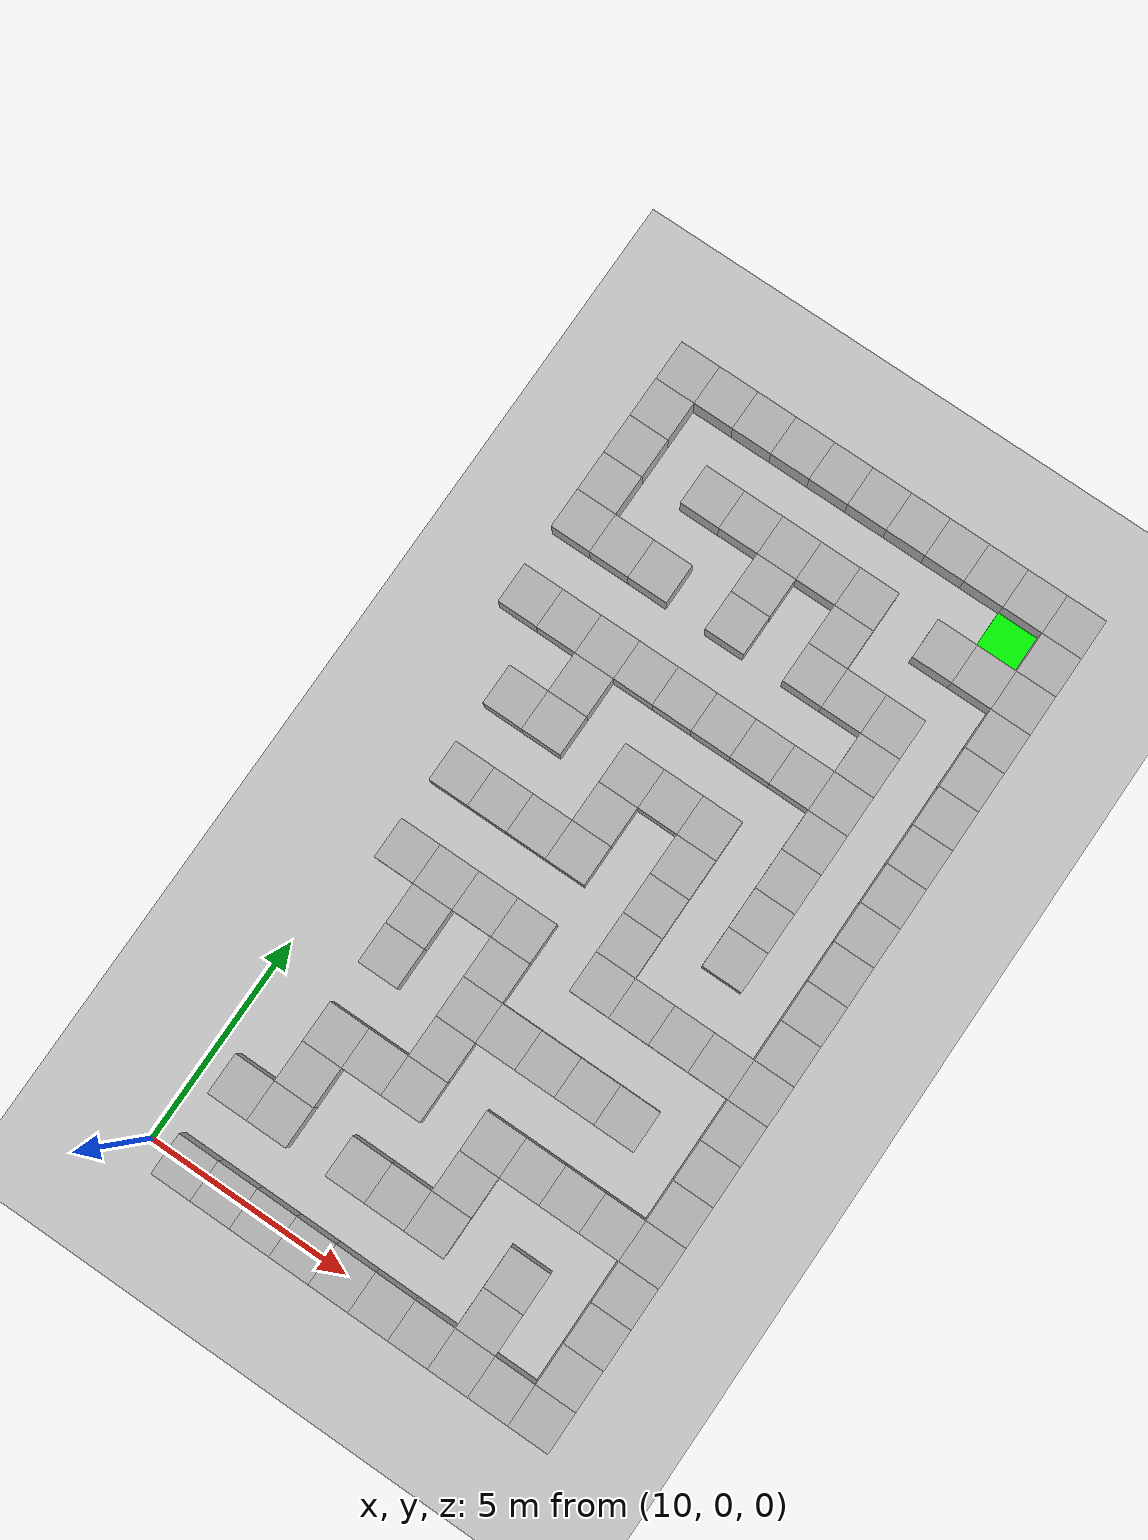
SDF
<sdf version="1.7">
 <world name="maze_world">
  <include><uri>model://ground_plane</uri></include>
  <include><uri>model://sun</uri></include>
  <model name="wall_11_0">
   <static>true</static>
   <pose>11 0 0 0 0 0</pose>
   <link name="link">
    <collision name="collision"><geometry><box><size>1 1 1</size></box></geometry></collision>
    <visual name="visual"><geometry><box><size>1 1 1</size></box></geometry></visual>
   </link>
  </model>
  <model name="wall_12_0">
   <static>true</static>
   <pose>12 0 0 0 0 0</pose>
   <link name="link">
    <collision name="collision"><geometry><box><size>1 1 1</size></box></geometry></collision>
    <visual name="visual"><geometry><box><size>1 1 1</size></box></geometry></visual>
   </link>
  </model>
  <model name="wall_13_0">
   <static>true</static>
   <pose>13 0 0 0 0 0</pose>
   <link name="link">
    <collision name="collision"><geometry><box><size>1 1 1</size></box></geometry></collision>
    <visual name="visual"><geometry><box><size>1 1 1</size></box></geometry></visual>
   </link>
  </model>
  <model name="wall_14_0">
   <static>true</static>
   <pose>14 0 0 0 0 0</pose>
   <link name="link">
    <collision name="collision"><geometry><box><size>1 1 1</size></box></geometry></collision>
    <visual name="visual"><geometry><box><size>1 1 1</size></box></geometry></visual>
   </link>
  </model>
  <model name="wall_15_0">
   <static>true</static>
   <pose>15 0 0 0 0 0</pose>
   <link name="link">
    <collision name="collision"><geometry><box><size>1 1 1</size></box></geometry></collision>
    <visual name="visual"><geometry><box><size>1 1 1</size></box></geometry></visual>
   </link>
  </model>
  <model name="wall_16_0">
   <static>true</static>
   <pose>16 0 0 0 0 0</pose>
   <link name="link">
    <collision name="collision"><geometry><box><size>1 1 1</size></box></geometry></collision>
    <visual name="visual"><geometry><box><size>1 1 1</size></box></geometry></visual>
   </link>
  </model>
  <model name="wall_17_0">
   <static>true</static>
   <pose>17 0 0 0 0 0</pose>
   <link name="link">
    <collision name="collision"><geometry><box><size>1 1 1</size></box></geometry></collision>
    <visual name="visual"><geometry><box><size>1 1 1</size></box></geometry></visual>
   </link>
  </model>
  <model name="wall_18_0">
   <static>true</static>
   <pose>18 0 0 0 0 0</pose>
   <link name="link">
    <collision name="collision"><geometry><box><size>1 1 1</size></box></geometry></collision>
    <visual name="visual"><geometry><box><size>1 1 1</size></box></geometry></visual>
   </link>
  </model>
  <model name="wall_19_0">
   <static>true</static>
   <pose>19 0 0 0 0 0</pose>
   <link name="link">
    <collision name="collision"><geometry><box><size>1 1 1</size></box></geometry></collision>
    <visual name="visual"><geometry><box><size>1 1 1</size></box></geometry></visual>
   </link>
  </model>
  <model name="wall_20_0">
   <static>true</static>
   <pose>20 0 0 0 0 0</pose>
   <link name="link">
    <collision name="collision"><geometry><box><size>1 1 1</size></box></geometry></collision>
    <visual name="visual"><geometry><box><size>1 1 1</size></box></geometry></visual>
   </link>
  </model>
  <model name="wall_18_1">
   <static>true</static>
   <pose>18 1 0 0 0 0</pose>
   <link name="link">
    <collision name="collision"><geometry><box><size>1 1 1</size></box></geometry></collision>
    <visual name="visual"><geometry><box><size>1 1 1</size></box></geometry></visual>
   </link>
  </model>
  <model name="wall_20_1">
   <static>true</static>
   <pose>20 1 0 0 0 0</pose>
   <link name="link">
    <collision name="collision"><geometry><box><size>1 1 1</size></box></geometry></collision>
    <visual name="visual"><geometry><box><size>1 1 1</size></box></geometry></visual>
   </link>
  </model>
  <model name="wall_11_2">
   <static>true</static>
   <pose>11 2 0 0 0 0</pose>
   <link name="link">
    <collision name="collision"><geometry><box><size>1 1 1</size></box></geometry></collision>
    <visual name="visual"><geometry><box><size>1 1 1</size></box></geometry></visual>
   </link>
  </model>
  <model name="wall_12_2">
   <static>true</static>
   <pose>12 2 0 0 0 0</pose>
   <link name="link">
    <collision name="collision"><geometry><box><size>1 1 1</size></box></geometry></collision>
    <visual name="visual"><geometry><box><size>1 1 1</size></box></geometry></visual>
   </link>
  </model>
  <model name="wall_14_2">
   <static>true</static>
   <pose>14 2 0 0 0 0</pose>
   <link name="link">
    <collision name="collision"><geometry><box><size>1 1 1</size></box></geometry></collision>
    <visual name="visual"><geometry><box><size>1 1 1</size></box></geometry></visual>
   </link>
  </model>
  <model name="wall_15_2">
   <static>true</static>
   <pose>15 2 0 0 0 0</pose>
   <link name="link">
    <collision name="collision"><geometry><box><size>1 1 1</size></box></geometry></collision>
    <visual name="visual"><geometry><box><size>1 1 1</size></box></geometry></visual>
   </link>
  </model>
  <model name="wall_16_2">
   <static>true</static>
   <pose>16 2 0 0 0 0</pose>
   <link name="link">
    <collision name="collision"><geometry><box><size>1 1 1</size></box></geometry></collision>
    <visual name="visual"><geometry><box><size>1 1 1</size></box></geometry></visual>
   </link>
  </model>
  <model name="wall_18_2">
   <static>true</static>
   <pose>18 2 0 0 0 0</pose>
   <link name="link">
    <collision name="collision"><geometry><box><size>1 1 1</size></box></geometry></collision>
    <visual name="visual"><geometry><box><size>1 1 1</size></box></geometry></visual>
   </link>
  </model>
  <model name="wall_20_2">
   <static>true</static>
   <pose>20 2 0 0 0 0</pose>
   <link name="link">
    <collision name="collision"><geometry><box><size>1 1 1</size></box></geometry></collision>
    <visual name="visual"><geometry><box><size>1 1 1</size></box></geometry></visual>
   </link>
  </model>
  <model name="wall_12_3">
   <static>true</static>
   <pose>12 3 0 0 0 0</pose>
   <link name="link">
    <collision name="collision"><geometry><box><size>1 1 1</size></box></geometry></collision>
    <visual name="visual"><geometry><box><size>1 1 1</size></box></geometry></visual>
   </link>
  </model>
  <model name="wall_16_3">
   <static>true</static>
   <pose>16 3 0 0 0 0</pose>
   <link name="link">
    <collision name="collision"><geometry><box><size>1 1 1</size></box></geometry></collision>
    <visual name="visual"><geometry><box><size>1 1 1</size></box></geometry></visual>
   </link>
  </model>
  <model name="wall_20_3">
   <static>true</static>
   <pose>20 3 0 0 0 0</pose>
   <link name="link">
    <collision name="collision"><geometry><box><size>1 1 1</size></box></geometry></collision>
    <visual name="visual"><geometry><box><size>1 1 1</size></box></geometry></visual>
   </link>
  </model>
  <model name="wall_12_4">
   <static>true</static>
   <pose>12 4 0 0 0 0</pose>
   <link name="link">
    <collision name="collision"><geometry><box><size>1 1 1</size></box></geometry></collision>
    <visual name="visual"><geometry><box><size>1 1 1</size></box></geometry></visual>
   </link>
  </model>
  <model name="wall_13_4">
   <static>true</static>
   <pose>13 4 0 0 0 0</pose>
   <link name="link">
    <collision name="collision"><geometry><box><size>1 1 1</size></box></geometry></collision>
    <visual name="visual"><geometry><box><size>1 1 1</size></box></geometry></visual>
   </link>
  </model>
  <model name="wall_14_4">
   <static>true</static>
   <pose>14 4 0 0 0 0</pose>
   <link name="link">
    <collision name="collision"><geometry><box><size>1 1 1</size></box></geometry></collision>
    <visual name="visual"><geometry><box><size>1 1 1</size></box></geometry></visual>
   </link>
  </model>
  <model name="wall_16_4">
   <static>true</static>
   <pose>16 4 0 0 0 0</pose>
   <link name="link">
    <collision name="collision"><geometry><box><size>1 1 1</size></box></geometry></collision>
    <visual name="visual"><geometry><box><size>1 1 1</size></box></geometry></visual>
   </link>
  </model>
  <model name="wall_17_4">
   <static>true</static>
   <pose>17 4 0 0 0 0</pose>
   <link name="link">
    <collision name="collision"><geometry><box><size>1 1 1</size></box></geometry></collision>
    <visual name="visual"><geometry><box><size>1 1 1</size></box></geometry></visual>
   </link>
  </model>
  <model name="wall_18_4">
   <static>true</static>
   <pose>18 4 0 0 0 0</pose>
   <link name="link">
    <collision name="collision"><geometry><box><size>1 1 1</size></box></geometry></collision>
    <visual name="visual"><geometry><box><size>1 1 1</size></box></geometry></visual>
   </link>
  </model>
  <model name="wall_19_4">
   <static>true</static>
   <pose>19 4 0 0 0 0</pose>
   <link name="link">
    <collision name="collision"><geometry><box><size>1 1 1</size></box></geometry></collision>
    <visual name="visual"><geometry><box><size>1 1 1</size></box></geometry></visual>
   </link>
  </model>
  <model name="wall_20_4">
   <static>true</static>
   <pose>20 4 0 0 0 0</pose>
   <link name="link">
    <collision name="collision"><geometry><box><size>1 1 1</size></box></geometry></collision>
    <visual name="visual"><geometry><box><size>1 1 1</size></box></geometry></visual>
   </link>
  </model>
  <model name="wall_14_5">
   <static>true</static>
   <pose>14 5 0 0 0 0</pose>
   <link name="link">
    <collision name="collision"><geometry><box><size>1 1 1</size></box></geometry></collision>
    <visual name="visual"><geometry><box><size>1 1 1</size></box></geometry></visual>
   </link>
  </model>
  <model name="wall_20_5">
   <static>true</static>
   <pose>20 5 0 0 0 0</pose>
   <link name="link">
    <collision name="collision"><geometry><box><size>1 1 1</size></box></geometry></collision>
    <visual name="visual"><geometry><box><size>1 1 1</size></box></geometry></visual>
   </link>
  </model>
  <model name="wall_12_6">
   <static>true</static>
   <pose>12 6 0 0 0 0</pose>
   <link name="link">
    <collision name="collision"><geometry><box><size>1 1 1</size></box></geometry></collision>
    <visual name="visual"><geometry><box><size>1 1 1</size></box></geometry></visual>
   </link>
  </model>
  <model name="wall_14_6">
   <static>true</static>
   <pose>14 6 0 0 0 0</pose>
   <link name="link">
    <collision name="collision"><geometry><box><size>1 1 1</size></box></geometry></collision>
    <visual name="visual"><geometry><box><size>1 1 1</size></box></geometry></visual>
   </link>
  </model>
  <model name="wall_15_6">
   <static>true</static>
   <pose>15 6 0 0 0 0</pose>
   <link name="link">
    <collision name="collision"><geometry><box><size>1 1 1</size></box></geometry></collision>
    <visual name="visual"><geometry><box><size>1 1 1</size></box></geometry></visual>
   </link>
  </model>
  <model name="wall_16_6">
   <static>true</static>
   <pose>16 6 0 0 0 0</pose>
   <link name="link">
    <collision name="collision"><geometry><box><size>1 1 1</size></box></geometry></collision>
    <visual name="visual"><geometry><box><size>1 1 1</size></box></geometry></visual>
   </link>
  </model>
  <model name="wall_17_6">
   <static>true</static>
   <pose>17 6 0 0 0 0</pose>
   <link name="link">
    <collision name="collision"><geometry><box><size>1 1 1</size></box></geometry></collision>
    <visual name="visual"><geometry><box><size>1 1 1</size></box></geometry></visual>
   </link>
  </model>
  <model name="wall_18_6">
   <static>true</static>
   <pose>18 6 0 0 0 0</pose>
   <link name="link">
    <collision name="collision"><geometry><box><size>1 1 1</size></box></geometry></collision>
    <visual name="visual"><geometry><box><size>1 1 1</size></box></geometry></visual>
   </link>
  </model>
  <model name="wall_20_6">
   <static>true</static>
   <pose>20 6 0 0 0 0</pose>
   <link name="link">
    <collision name="collision"><geometry><box><size>1 1 1</size></box></geometry></collision>
    <visual name="visual"><geometry><box><size>1 1 1</size></box></geometry></visual>
   </link>
  </model>
  <model name="wall_12_7">
   <static>true</static>
   <pose>12 7 0 0 0 0</pose>
   <link name="link">
    <collision name="collision"><geometry><box><size>1 1 1</size></box></geometry></collision>
    <visual name="visual"><geometry><box><size>1 1 1</size></box></geometry></visual>
   </link>
  </model>
  <model name="wall_14_7">
   <static>true</static>
   <pose>14 7 0 0 0 0</pose>
   <link name="link">
    <collision name="collision"><geometry><box><size>1 1 1</size></box></geometry></collision>
    <visual name="visual"><geometry><box><size>1 1 1</size></box></geometry></visual>
   </link>
  </model>
  <model name="wall_20_7">
   <static>true</static>
   <pose>20 7 0 0 0 0</pose>
   <link name="link">
    <collision name="collision"><geometry><box><size>1 1 1</size></box></geometry></collision>
    <visual name="visual"><geometry><box><size>1 1 1</size></box></geometry></visual>
   </link>
  </model>
  <model name="wall_11_8">
   <static>true</static>
   <pose>11 8 0 0 0 0</pose>
   <link name="link">
    <collision name="collision"><geometry><box><size>1 1 1</size></box></geometry></collision>
    <visual name="visual"><geometry><box><size>1 1 1</size></box></geometry></visual>
   </link>
  </model>
  <model name="wall_12_8">
   <static>true</static>
   <pose>12 8 0 0 0 0</pose>
   <link name="link">
    <collision name="collision"><geometry><box><size>1 1 1</size></box></geometry></collision>
    <visual name="visual"><geometry><box><size>1 1 1</size></box></geometry></visual>
   </link>
  </model>
  <model name="wall_13_8">
   <static>true</static>
   <pose>13 8 0 0 0 0</pose>
   <link name="link">
    <collision name="collision"><geometry><box><size>1 1 1</size></box></geometry></collision>
    <visual name="visual"><geometry><box><size>1 1 1</size></box></geometry></visual>
   </link>
  </model>
  <model name="wall_14_8">
   <static>true</static>
   <pose>14 8 0 0 0 0</pose>
   <link name="link">
    <collision name="collision"><geometry><box><size>1 1 1</size></box></geometry></collision>
    <visual name="visual"><geometry><box><size>1 1 1</size></box></geometry></visual>
   </link>
  </model>
  <model name="wall_16_8">
   <static>true</static>
   <pose>16 8 0 0 0 0</pose>
   <link name="link">
    <collision name="collision"><geometry><box><size>1 1 1</size></box></geometry></collision>
    <visual name="visual"><geometry><box><size>1 1 1</size></box></geometry></visual>
   </link>
  </model>
  <model name="wall_17_8">
   <static>true</static>
   <pose>17 8 0 0 0 0</pose>
   <link name="link">
    <collision name="collision"><geometry><box><size>1 1 1</size></box></geometry></collision>
    <visual name="visual"><geometry><box><size>1 1 1</size></box></geometry></visual>
   </link>
  </model>
  <model name="wall_18_8">
   <static>true</static>
   <pose>18 8 0 0 0 0</pose>
   <link name="link">
    <collision name="collision"><geometry><box><size>1 1 1</size></box></geometry></collision>
    <visual name="visual"><geometry><box><size>1 1 1</size></box></geometry></visual>
   </link>
  </model>
  <model name="wall_19_8">
   <static>true</static>
   <pose>19 8 0 0 0 0</pose>
   <link name="link">
    <collision name="collision"><geometry><box><size>1 1 1</size></box></geometry></collision>
    <visual name="visual"><geometry><box><size>1 1 1</size></box></geometry></visual>
   </link>
  </model>
  <model name="wall_20_8">
   <static>true</static>
   <pose>20 8 0 0 0 0</pose>
   <link name="link">
    <collision name="collision"><geometry><box><size>1 1 1</size></box></geometry></collision>
    <visual name="visual"><geometry><box><size>1 1 1</size></box></geometry></visual>
   </link>
  </model>
  <model name="wall_16_9">
   <static>true</static>
   <pose>16 9 0 0 0 0</pose>
   <link name="link">
    <collision name="collision"><geometry><box><size>1 1 1</size></box></geometry></collision>
    <visual name="visual"><geometry><box><size>1 1 1</size></box></geometry></visual>
   </link>
  </model>
  <model name="wall_20_9">
   <static>true</static>
   <pose>20 9 0 0 0 0</pose>
   <link name="link">
    <collision name="collision"><geometry><box><size>1 1 1</size></box></geometry></collision>
    <visual name="visual"><geometry><box><size>1 1 1</size></box></geometry></visual>
   </link>
  </model>
  <model name="wall_11_10">
   <static>true</static>
   <pose>11 10 0 0 0 0</pose>
   <link name="link">
    <collision name="collision"><geometry><box><size>1 1 1</size></box></geometry></collision>
    <visual name="visual"><geometry><box><size>1 1 1</size></box></geometry></visual>
   </link>
  </model>
  <model name="wall_12_10">
   <static>true</static>
   <pose>12 10 0 0 0 0</pose>
   <link name="link">
    <collision name="collision"><geometry><box><size>1 1 1</size></box></geometry></collision>
    <visual name="visual"><geometry><box><size>1 1 1</size></box></geometry></visual>
   </link>
  </model>
  <model name="wall_13_10">
   <static>true</static>
   <pose>13 10 0 0 0 0</pose>
   <link name="link">
    <collision name="collision"><geometry><box><size>1 1 1</size></box></geometry></collision>
    <visual name="visual"><geometry><box><size>1 1 1</size></box></geometry></visual>
   </link>
  </model>
  <model name="wall_14_10">
   <static>true</static>
   <pose>14 10 0 0 0 0</pose>
   <link name="link">
    <collision name="collision"><geometry><box><size>1 1 1</size></box></geometry></collision>
    <visual name="visual"><geometry><box><size>1 1 1</size></box></geometry></visual>
   </link>
  </model>
  <model name="wall_16_10">
   <static>true</static>
   <pose>16 10 0 0 0 0</pose>
   <link name="link">
    <collision name="collision"><geometry><box><size>1 1 1</size></box></geometry></collision>
    <visual name="visual"><geometry><box><size>1 1 1</size></box></geometry></visual>
   </link>
  </model>
  <model name="wall_18_10">
   <static>true</static>
   <pose>18 10 0 0 0 0</pose>
   <link name="link">
    <collision name="collision"><geometry><box><size>1 1 1</size></box></geometry></collision>
    <visual name="visual"><geometry><box><size>1 1 1</size></box></geometry></visual>
   </link>
  </model>
  <model name="wall_20_10">
   <static>true</static>
   <pose>20 10 0 0 0 0</pose>
   <link name="link">
    <collision name="collision"><geometry><box><size>1 1 1</size></box></geometry></collision>
    <visual name="visual"><geometry><box><size>1 1 1</size></box></geometry></visual>
   </link>
  </model>
  <model name="wall_14_11">
   <static>true</static>
   <pose>14 11 0 0 0 0</pose>
   <link name="link">
    <collision name="collision"><geometry><box><size>1 1 1</size></box></geometry></collision>
    <visual name="visual"><geometry><box><size>1 1 1</size></box></geometry></visual>
   </link>
  </model>
  <model name="wall_16_11">
   <static>true</static>
   <pose>16 11 0 0 0 0</pose>
   <link name="link">
    <collision name="collision"><geometry><box><size>1 1 1</size></box></geometry></collision>
    <visual name="visual"><geometry><box><size>1 1 1</size></box></geometry></visual>
   </link>
  </model>
  <model name="wall_18_11">
   <static>true</static>
   <pose>18 11 0 0 0 0</pose>
   <link name="link">
    <collision name="collision"><geometry><box><size>1 1 1</size></box></geometry></collision>
    <visual name="visual"><geometry><box><size>1 1 1</size></box></geometry></visual>
   </link>
  </model>
  <model name="wall_20_11">
   <static>true</static>
   <pose>20 11 0 0 0 0</pose>
   <link name="link">
    <collision name="collision"><geometry><box><size>1 1 1</size></box></geometry></collision>
    <visual name="visual"><geometry><box><size>1 1 1</size></box></geometry></visual>
   </link>
  </model>
  <model name="wall_11_12">
   <static>true</static>
   <pose>11 12 0 0 0 0</pose>
   <link name="link">
    <collision name="collision"><geometry><box><size>1 1 1</size></box></geometry></collision>
    <visual name="visual"><geometry><box><size>1 1 1</size></box></geometry></visual>
   </link>
  </model>
  <model name="wall_12_12">
   <static>true</static>
   <pose>12 12 0 0 0 0</pose>
   <link name="link">
    <collision name="collision"><geometry><box><size>1 1 1</size></box></geometry></collision>
    <visual name="visual"><geometry><box><size>1 1 1</size></box></geometry></visual>
   </link>
  </model>
  <model name="wall_14_12">
   <static>true</static>
   <pose>14 12 0 0 0 0</pose>
   <link name="link">
    <collision name="collision"><geometry><box><size>1 1 1</size></box></geometry></collision>
    <visual name="visual"><geometry><box><size>1 1 1</size></box></geometry></visual>
   </link>
  </model>
  <model name="wall_15_12">
   <static>true</static>
   <pose>15 12 0 0 0 0</pose>
   <link name="link">
    <collision name="collision"><geometry><box><size>1 1 1</size></box></geometry></collision>
    <visual name="visual"><geometry><box><size>1 1 1</size></box></geometry></visual>
   </link>
  </model>
  <model name="wall_16_12">
   <static>true</static>
   <pose>16 12 0 0 0 0</pose>
   <link name="link">
    <collision name="collision"><geometry><box><size>1 1 1</size></box></geometry></collision>
    <visual name="visual"><geometry><box><size>1 1 1</size></box></geometry></visual>
   </link>
  </model>
  <model name="wall_18_12">
   <static>true</static>
   <pose>18 12 0 0 0 0</pose>
   <link name="link">
    <collision name="collision"><geometry><box><size>1 1 1</size></box></geometry></collision>
    <visual name="visual"><geometry><box><size>1 1 1</size></box></geometry></visual>
   </link>
  </model>
  <model name="wall_20_12">
   <static>true</static>
   <pose>20 12 0 0 0 0</pose>
   <link name="link">
    <collision name="collision"><geometry><box><size>1 1 1</size></box></geometry></collision>
    <visual name="visual"><geometry><box><size>1 1 1</size></box></geometry></visual>
   </link>
  </model>
  <model name="wall_12_13">
   <static>true</static>
   <pose>12 13 0 0 0 0</pose>
   <link name="link">
    <collision name="collision"><geometry><box><size>1 1 1</size></box></geometry></collision>
    <visual name="visual"><geometry><box><size>1 1 1</size></box></geometry></visual>
   </link>
  </model>
  <model name="wall_18_13">
   <static>true</static>
   <pose>18 13 0 0 0 0</pose>
   <link name="link">
    <collision name="collision"><geometry><box><size>1 1 1</size></box></geometry></collision>
    <visual name="visual"><geometry><box><size>1 1 1</size></box></geometry></visual>
   </link>
  </model>
  <model name="wall_20_13">
   <static>true</static>
   <pose>20 13 0 0 0 0</pose>
   <link name="link">
    <collision name="collision"><geometry><box><size>1 1 1</size></box></geometry></collision>
    <visual name="visual"><geometry><box><size>1 1 1</size></box></geometry></visual>
   </link>
  </model>
  <model name="wall_10_14">
   <static>true</static>
   <pose>10 14 0 0 0 0</pose>
   <link name="link">
    <collision name="collision"><geometry><box><size>1 1 1</size></box></geometry></collision>
    <visual name="visual"><geometry><box><size>1 1 1</size></box></geometry></visual>
   </link>
  </model>
  <model name="wall_11_14">
   <static>true</static>
   <pose>11 14 0 0 0 0</pose>
   <link name="link">
    <collision name="collision"><geometry><box><size>1 1 1</size></box></geometry></collision>
    <visual name="visual"><geometry><box><size>1 1 1</size></box></geometry></visual>
   </link>
  </model>
  <model name="wall_12_14">
   <static>true</static>
   <pose>12 14 0 0 0 0</pose>
   <link name="link">
    <collision name="collision"><geometry><box><size>1 1 1</size></box></geometry></collision>
    <visual name="visual"><geometry><box><size>1 1 1</size></box></geometry></visual>
   </link>
  </model>
  <model name="wall_13_14">
   <static>true</static>
   <pose>13 14 0 0 0 0</pose>
   <link name="link">
    <collision name="collision"><geometry><box><size>1 1 1</size></box></geometry></collision>
    <visual name="visual"><geometry><box><size>1 1 1</size></box></geometry></visual>
   </link>
  </model>
  <model name="wall_14_14">
   <static>true</static>
   <pose>14 14 0 0 0 0</pose>
   <link name="link">
    <collision name="collision"><geometry><box><size>1 1 1</size></box></geometry></collision>
    <visual name="visual"><geometry><box><size>1 1 1</size></box></geometry></visual>
   </link>
  </model>
  <model name="wall_15_14">
   <static>true</static>
   <pose>15 14 0 0 0 0</pose>
   <link name="link">
    <collision name="collision"><geometry><box><size>1 1 1</size></box></geometry></collision>
    <visual name="visual"><geometry><box><size>1 1 1</size></box></geometry></visual>
   </link>
  </model>
  <model name="wall_16_14">
   <static>true</static>
   <pose>16 14 0 0 0 0</pose>
   <link name="link">
    <collision name="collision"><geometry><box><size>1 1 1</size></box></geometry></collision>
    <visual name="visual"><geometry><box><size>1 1 1</size></box></geometry></visual>
   </link>
  </model>
  <model name="wall_17_14">
   <static>true</static>
   <pose>17 14 0 0 0 0</pose>
   <link name="link">
    <collision name="collision"><geometry><box><size>1 1 1</size></box></geometry></collision>
    <visual name="visual"><geometry><box><size>1 1 1</size></box></geometry></visual>
   </link>
  </model>
  <model name="wall_18_14">
   <static>true</static>
   <pose>18 14 0 0 0 0</pose>
   <link name="link">
    <collision name="collision"><geometry><box><size>1 1 1</size></box></geometry></collision>
    <visual name="visual"><geometry><box><size>1 1 1</size></box></geometry></visual>
   </link>
  </model>
  <model name="wall_20_14">
   <static>true</static>
   <pose>20 14 0 0 0 0</pose>
   <link name="link">
    <collision name="collision"><geometry><box><size>1 1 1</size></box></geometry></collision>
    <visual name="visual"><geometry><box><size>1 1 1</size></box></geometry></visual>
   </link>
  </model>
  <model name="wall_18_15">
   <static>true</static>
   <pose>18 15 0 0 0 0</pose>
   <link name="link">
    <collision name="collision"><geometry><box><size>1 1 1</size></box></geometry></collision>
    <visual name="visual"><geometry><box><size>1 1 1</size></box></geometry></visual>
   </link>
  </model>
  <model name="wall_20_15">
   <static>true</static>
   <pose>20 15 0 0 0 0</pose>
   <link name="link">
    <collision name="collision"><geometry><box><size>1 1 1</size></box></geometry></collision>
    <visual name="visual"><geometry><box><size>1 1 1</size></box></geometry></visual>
   </link>
  </model>
  <model name="wall_10_16">
   <static>true</static>
   <pose>10 16 0 0 0 0</pose>
   <link name="link">
    <collision name="collision"><geometry><box><size>1 1 1</size></box></geometry></collision>
    <visual name="visual"><geometry><box><size>1 1 1</size></box></geometry></visual>
   </link>
  </model>
  <model name="wall_11_16">
   <static>true</static>
   <pose>11 16 0 0 0 0</pose>
   <link name="link">
    <collision name="collision"><geometry><box><size>1 1 1</size></box></geometry></collision>
    <visual name="visual"><geometry><box><size>1 1 1</size></box></geometry></visual>
   </link>
  </model>
  <model name="wall_12_16">
   <static>true</static>
   <pose>12 16 0 0 0 0</pose>
   <link name="link">
    <collision name="collision"><geometry><box><size>1 1 1</size></box></geometry></collision>
    <visual name="visual"><geometry><box><size>1 1 1</size></box></geometry></visual>
   </link>
  </model>
  <model name="wall_14_16">
   <static>true</static>
   <pose>14 16 0 0 0 0</pose>
   <link name="link">
    <collision name="collision"><geometry><box><size>1 1 1</size></box></geometry></collision>
    <visual name="visual"><geometry><box><size>1 1 1</size></box></geometry></visual>
   </link>
  </model>
  <model name="wall_16_16">
   <static>true</static>
   <pose>16 16 0 0 0 0</pose>
   <link name="link">
    <collision name="collision"><geometry><box><size>1 1 1</size></box></geometry></collision>
    <visual name="visual"><geometry><box><size>1 1 1</size></box></geometry></visual>
   </link>
  </model>
  <model name="wall_17_16">
   <static>true</static>
   <pose>17 16 0 0 0 0</pose>
   <link name="link">
    <collision name="collision"><geometry><box><size>1 1 1</size></box></geometry></collision>
    <visual name="visual"><geometry><box><size>1 1 1</size></box></geometry></visual>
   </link>
  </model>
  <model name="wall_18_16">
   <static>true</static>
   <pose>18 16 0 0 0 0</pose>
   <link name="link">
    <collision name="collision"><geometry><box><size>1 1 1</size></box></geometry></collision>
    <visual name="visual"><geometry><box><size>1 1 1</size></box></geometry></visual>
   </link>
  </model>
  <model name="wall_20_16">
   <static>true</static>
   <pose>20 16 0 0 0 0</pose>
   <link name="link">
    <collision name="collision"><geometry><box><size>1 1 1</size></box></geometry></collision>
    <visual name="visual"><geometry><box><size>1 1 1</size></box></geometry></visual>
   </link>
  </model>
  <model name="wall_10_17">
   <static>true</static>
   <pose>10 17 0 0 0 0</pose>
   <link name="link">
    <collision name="collision"><geometry><box><size>1 1 1</size></box></geometry></collision>
    <visual name="visual"><geometry><box><size>1 1 1</size></box></geometry></visual>
   </link>
  </model>
  <model name="wall_14_17">
   <static>true</static>
   <pose>14 17 0 0 0 0</pose>
   <link name="link">
    <collision name="collision"><geometry><box><size>1 1 1</size></box></geometry></collision>
    <visual name="visual"><geometry><box><size>1 1 1</size></box></geometry></visual>
   </link>
  </model>
  <model name="wall_16_17">
   <static>true</static>
   <pose>16 17 0 0 0 0</pose>
   <link name="link">
    <collision name="collision"><geometry><box><size>1 1 1</size></box></geometry></collision>
    <visual name="visual"><geometry><box><size>1 1 1</size></box></geometry></visual>
   </link>
  </model>
  <model name="wall_20_17">
   <static>true</static>
   <pose>20 17 0 0 0 0</pose>
   <link name="link">
    <collision name="collision"><geometry><box><size>1 1 1</size></box></geometry></collision>
    <visual name="visual"><geometry><box><size>1 1 1</size></box></geometry></visual>
   </link>
  </model>
  <model name="wall_10_18">
   <static>true</static>
   <pose>10 18 0 0 0 0</pose>
   <link name="link">
    <collision name="collision"><geometry><box><size>1 1 1</size></box></geometry></collision>
    <visual name="visual"><geometry><box><size>1 1 1</size></box></geometry></visual>
   </link>
  </model>
  <model name="wall_12_18">
   <static>true</static>
   <pose>12 18 0 0 0 0</pose>
   <link name="link">
    <collision name="collision"><geometry><box><size>1 1 1</size></box></geometry></collision>
    <visual name="visual"><geometry><box><size>1 1 1</size></box></geometry></visual>
   </link>
  </model>
  <model name="wall_13_18">
   <static>true</static>
   <pose>13 18 0 0 0 0</pose>
   <link name="link">
    <collision name="collision"><geometry><box><size>1 1 1</size></box></geometry></collision>
    <visual name="visual"><geometry><box><size>1 1 1</size></box></geometry></visual>
   </link>
  </model>
  <model name="wall_14_18">
   <static>true</static>
   <pose>14 18 0 0 0 0</pose>
   <link name="link">
    <collision name="collision"><geometry><box><size>1 1 1</size></box></geometry></collision>
    <visual name="visual"><geometry><box><size>1 1 1</size></box></geometry></visual>
   </link>
  </model>
  <model name="wall_15_18">
   <static>true</static>
   <pose>15 18 0 0 0 0</pose>
   <link name="link">
    <collision name="collision"><geometry><box><size>1 1 1</size></box></geometry></collision>
    <visual name="visual"><geometry><box><size>1 1 1</size></box></geometry></visual>
   </link>
  </model>
  <model name="wall_16_18">
   <static>true</static>
   <pose>16 18 0 0 0 0</pose>
   <link name="link">
    <collision name="collision"><geometry><box><size>1 1 1</size></box></geometry></collision>
    <visual name="visual"><geometry><box><size>1 1 1</size></box></geometry></visual>
   </link>
  </model>
  <model name="wall_18_18">
   <static>true</static>
   <pose>18 18 0 0 0 0</pose>
   <link name="link">
    <collision name="collision"><geometry><box><size>1 1 1</size></box></geometry></collision>
    <visual name="visual"><geometry><box><size>1 1 1</size></box></geometry></visual>
   </link>
  </model>
  <model name="wall_19_18">
   <static>true</static>
   <pose>19 18 0 0 0 0</pose>
   <link name="link">
    <collision name="collision"><geometry><box><size>1 1 1</size></box></geometry></collision>
    <visual name="visual"><geometry><box><size>1 1 1</size></box></geometry></visual>
   </link>
  </model>
  <model name="wall_20_18">
   <static>true</static>
   <pose>20 18 0 0 0 0</pose>
   <link name="link">
    <collision name="collision"><geometry><box><size>1 1 1</size></box></geometry></collision>
    <visual name="visual"><geometry><box><size>1 1 1</size></box></geometry></visual>
   </link>
  </model>
  <model name="wall_10_19">
   <static>true</static>
   <pose>10 19 0 0 0 0</pose>
   <link name="link">
    <collision name="collision"><geometry><box><size>1 1 1</size></box></geometry></collision>
    <visual name="visual"><geometry><box><size>1 1 1</size></box></geometry></visual>
   </link>
  </model>
  <model name="goal_19_19">
   <static>true</static>
   <pose>19 19 0 0 0 0</pose>
   <link name="link">
    <collision name="collision"><geometry><box><size>1 1 0.001</size></box></geometry></collision>
    <visual name="visual">
     <geometry><box><size>1 1 0.1</size></box></geometry>
     <material><ambient>0 1 0 1</ambient></material>
    </visual>
   </link>
  </model>
  <model name="wall_20_19">
   <static>true</static>
   <pose>20 19 0 0 0 0</pose>
   <link name="link">
    <collision name="collision"><geometry><box><size>1 1 1</size></box></geometry></collision>
    <visual name="visual"><geometry><box><size>1 1 1</size></box></geometry></visual>
   </link>
  </model>
  <model name="wall_10_20">
   <static>true</static>
   <pose>10 20 0 0 0 0</pose>
   <link name="link">
    <collision name="collision"><geometry><box><size>1 1 1</size></box></geometry></collision>
    <visual name="visual"><geometry><box><size>1 1 1</size></box></geometry></visual>
   </link>
  </model>
  <model name="wall_11_20">
   <static>true</static>
   <pose>11 20 0 0 0 0</pose>
   <link name="link">
    <collision name="collision"><geometry><box><size>1 1 1</size></box></geometry></collision>
    <visual name="visual"><geometry><box><size>1 1 1</size></box></geometry></visual>
   </link>
  </model>
  <model name="wall_12_20">
   <static>true</static>
   <pose>12 20 0 0 0 0</pose>
   <link name="link">
    <collision name="collision"><geometry><box><size>1 1 1</size></box></geometry></collision>
    <visual name="visual"><geometry><box><size>1 1 1</size></box></geometry></visual>
   </link>
  </model>
  <model name="wall_13_20">
   <static>true</static>
   <pose>13 20 0 0 0 0</pose>
   <link name="link">
    <collision name="collision"><geometry><box><size>1 1 1</size></box></geometry></collision>
    <visual name="visual"><geometry><box><size>1 1 1</size></box></geometry></visual>
   </link>
  </model>
  <model name="wall_14_20">
   <static>true</static>
   <pose>14 20 0 0 0 0</pose>
   <link name="link">
    <collision name="collision"><geometry><box><size>1 1 1</size></box></geometry></collision>
    <visual name="visual"><geometry><box><size>1 1 1</size></box></geometry></visual>
   </link>
  </model>
  <model name="wall_15_20">
   <static>true</static>
   <pose>15 20 0 0 0 0</pose>
   <link name="link">
    <collision name="collision"><geometry><box><size>1 1 1</size></box></geometry></collision>
    <visual name="visual"><geometry><box><size>1 1 1</size></box></geometry></visual>
   </link>
  </model>
  <model name="wall_16_20">
   <static>true</static>
   <pose>16 20 0 0 0 0</pose>
   <link name="link">
    <collision name="collision"><geometry><box><size>1 1 1</size></box></geometry></collision>
    <visual name="visual"><geometry><box><size>1 1 1</size></box></geometry></visual>
   </link>
  </model>
  <model name="wall_17_20">
   <static>true</static>
   <pose>17 20 0 0 0 0</pose>
   <link name="link">
    <collision name="collision"><geometry><box><size>1 1 1</size></box></geometry></collision>
    <visual name="visual"><geometry><box><size>1 1 1</size></box></geometry></visual>
   </link>
  </model>
  <model name="wall_18_20">
   <static>true</static>
   <pose>18 20 0 0 0 0</pose>
   <link name="link">
    <collision name="collision"><geometry><box><size>1 1 1</size></box></geometry></collision>
    <visual name="visual"><geometry><box><size>1 1 1</size></box></geometry></visual>
   </link>
  </model>
  <model name="wall_19_20">
   <static>true</static>
   <pose>19 20 0 0 0 0</pose>
   <link name="link">
    <collision name="collision"><geometry><box><size>1 1 1</size></box></geometry></collision>
    <visual name="visual"><geometry><box><size>1 1 1</size></box></geometry></visual>
   </link>
  </model>
  <model name="wall_20_20">
   <static>true</static>
   <pose>20 20 0 0 0 0</pose>
   <link name="link">
    <collision name="collision"><geometry><box><size>1 1 1</size></box></geometry></collision>
    <visual name="visual"><geometry><box><size>1 1 1</size></box></geometry></visual>
   </link>
  </model>
 </world>
</sdf>
